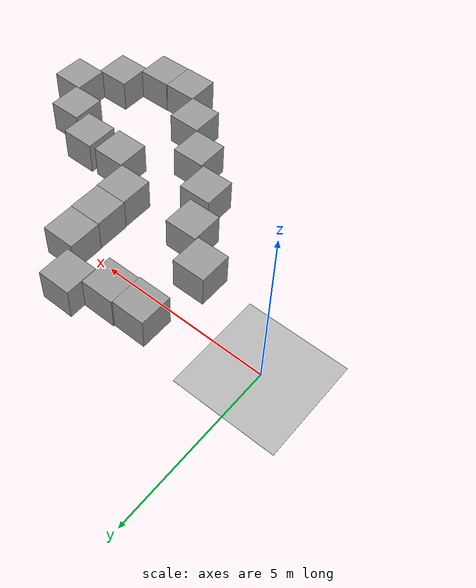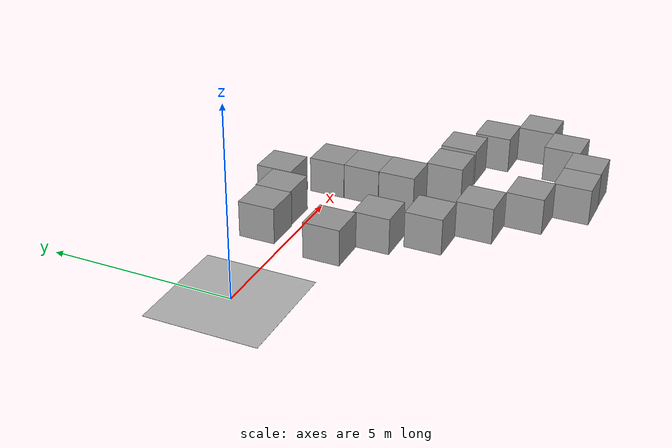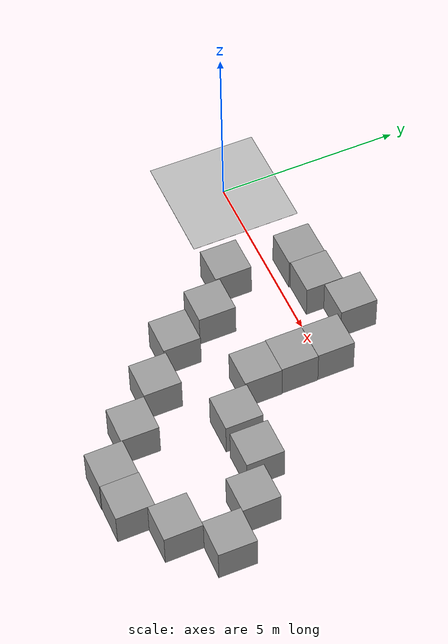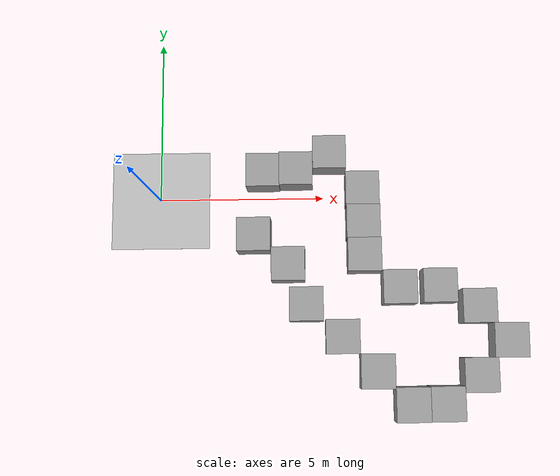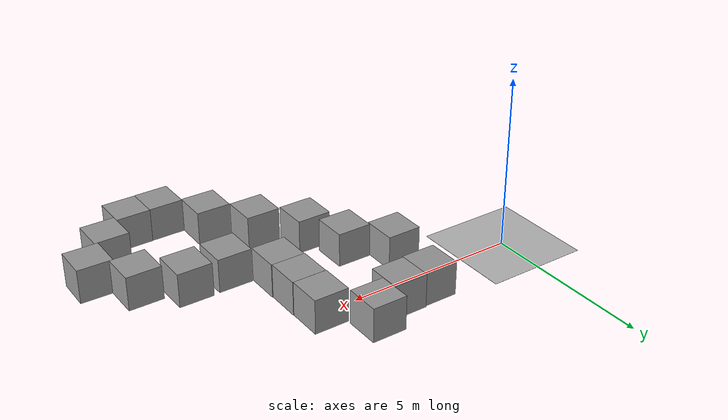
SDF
<sdf version="1.7">
 <world name="default">
  <light name="sun" type="directional">
   <pose>0 0 10 0 -0 0</pose>
   <diffuse>0.8 0.8 0.8 1</diffuse>
   <specular>0.2 0.2 0.2 1</specular>
   <attenuation>
    <range>1000</range>
    <constant>0.9</constant>
    <linear>0.01</linear>
    <quadratic>0.001</quadratic>
   </attenuation>
   <direction>-0.5 0.1 -0.9</direction>
   <spot><inner_angle>0</inner_angle><outer_angle>0</outer_angle><falloff>0</falloff></spot>
  </light>
  <model name="custom_ground_plane">
   <static>1</static>
   <link name="link">
    <collision name="collision">
     <geometry><plane><normal>0 0 1</normal><size>100 100</size></plane></geometry>
     <surface><friction><ode><mu>100</mu><mu2>50</mu2></ode></friction></surface>
     <max_contacts>100</max_contacts>
    </collision>
    <visual name="visual">
     <cast_shadows>0</cast_shadows>
     <geometry><plane><normal>0 0 1</normal><size>3 3</size></plane></geometry>
     <material>
      <script>
       <uri>model://custom_ground_plane/materials/scripts</uri>
       <uri>model://custom_ground_plane/materials/textures/</uri>
       <name>CustomGroundPlane/Image</name>
      </script>
     </material>
    </visual>
   </link>
  </model>
  <gravity>0 0 -9.8</gravity>
  <magnetic_field>6e-06 2.3e-05 -4.2e-05</magnetic_field>
  <atmosphere type="adiabatic"/>
  <physics type="ode">
   <max_step_size>0.001</max_step_size>
   <real_time_factor>1</real_time_factor>
   <real_time_update_rate>1000</real_time_update_rate>
  </physics>
  <scene><ambient>0.4 0.4 0.4 1</ambient><background>0.7 0.7 0.7 1</background><shadows>1</shadows></scene>
  <spherical_coordinates>
   <surface_model>EARTH_WGS84</surface_model>
   <latitude_deg>0</latitude_deg>
   <longitude_deg>0</longitude_deg>
   <elevation>0</elevation>
   <heading_deg>0</heading_deg>
  </spherical_coordinates>
  <model name="unit_box">
   <pose>3.18367 0.742182 0.499995 0 -1e-05 4.3e-05</pose>
   <link name="link">
    <inertial>
     <mass>1</mass>
     <inertia>
      <ixx>0.166667</ixx>
      <ixy>0</ixy>
      <ixz>0</ixz>
      <iyy>0.166667</iyy>
      <iyz>0</iyz>
      <izz>0.166667</izz>
     </inertia>
    </inertial>
    <collision name="collision"><geometry><box><size>1 1 1</size></box></geometry></collision>
    <visual name="visual">
     <geometry><box><size>1 1 1</size></box></geometry>
     <material>
      <script><name>Gazebo/Grey</name><uri>file://media/materials/scripts/gazebo.material</uri></script>
     </material>
    </visual>
   </link>
  </model>
  <model name="unit_box_0">
   <pose>4.18012 0.777787 0.499995 0 1e-05 4.5e-05</pose>
   <link name="link">
    <inertial>
     <mass>1</mass>
     <inertia>
      <ixx>0.166667</ixx>
      <ixy>0</ixy>
      <ixz>0</ixz>
      <iyy>0.166667</iyy>
      <iyz>0</iyz>
      <izz>0.166667</izz>
     </inertia>
    </inertial>
    <collision name="collision"><geometry><box><size>1 1 1</size></box></geometry></collision>
    <visual name="visual">
     <geometry><box><size>1 1 1</size></box></geometry>
     <material>
      <script><name>Gazebo/Grey</name><uri>file://media/materials/scripts/gazebo.material</uri></script>
     </material>
    </visual>
   </link>
  </model>
  <model name="unit_box_1">
   <pose>5.18964 1.26752 0.5 0 -0 4.2e-05</pose>
   <link name="link">
    <inertial>
     <mass>1</mass>
     <inertia>
      <ixx>0.166667</ixx>
      <ixy>0</ixy>
      <ixz>0</ixz>
      <iyy>0.166667</iyy>
      <iyz>0</iyz>
      <izz>0.166667</izz>
     </inertia>
    </inertial>
    <collision name="collision"><geometry><box><size>1 1 1</size></box></geometry></collision>
    <visual name="visual">
     <geometry><box><size>1 1 1</size></box></geometry>
     <material>
      <script><name>Gazebo/Grey</name><uri>file://media/materials/scripts/gazebo.material</uri></script>
     </material>
    </visual>
   </link>
  </model>
  <model name="unit_box_2">
   <pose>6.17079 0.163123 0.5 -0 -0 -0</pose>
   <link name="link">
    <inertial>
     <mass>1</mass>
     <inertia>
      <ixx>0.166667</ixx>
      <ixy>0</ixy>
      <ixz>0</ixz>
      <iyy>0.166667</iyy>
      <iyz>0</iyz>
      <izz>0.166667</izz>
     </inertia>
    </inertial>
    <collision name="collision"><geometry><box><size>1 1 1</size></box></geometry></collision>
    <visual name="visual">
     <geometry><box><size>1 1 1</size></box></geometry>
     <material>
      <script><name>Gazebo/Grey</name><uri>file://media/materials/scripts/gazebo.material</uri></script>
     </material>
    </visual>
   </link>
  </model>
  <model name="unit_box_3">
   <pose>6.18422 -0.837815 0.5 0 -0 0.000267</pose>
   <link name="link">
    <inertial>
     <mass>1</mass>
     <inertia>
      <ixx>0.166667</ixx>
      <ixy>0</ixy>
      <ixz>0</ixz>
      <iyy>0.166667</iyy>
      <iyz>0</iyz>
      <izz>0.166667</izz>
     </inertia>
    </inertial>
    <collision name="collision"><geometry><box><size>1 1 1</size></box></geometry></collision>
    <visual name="visual">
     <geometry><box><size>1 1 1</size></box></geometry>
     <material>
      <script><name>Gazebo/Grey</name><uri>file://media/materials/scripts/gazebo.material</uri></script>
     </material>
    </visual>
   </link>
  </model>
  <model name="unit_box_4">
   <pose>6.20272 -1.83781 0.499995 0 1e-05 0.000265</pose>
   <link name="link">
    <inertial>
     <mass>1</mass>
     <inertia>
      <ixx>0.166667</ixx>
      <ixy>0</ixy>
      <ixz>0</ixz>
      <iyy>0.166667</iyy>
      <iyz>0</iyz>
      <izz>0.166667</izz>
     </inertia>
    </inertial>
    <collision name="collision"><geometry><box><size>1 1 1</size></box></geometry></collision>
    <visual name="visual">
     <geometry><box><size>1 1 1</size></box></geometry>
     <material>
      <script><name>Gazebo/Grey</name><uri>file://media/materials/scripts/gazebo.material</uri></script>
     </material>
    </visual>
   </link>
  </model>
  <model name="unit_box_5">
   <pose>2.90685 -1.19518 0.5 -0 -0 -0</pose>
   <link name="link">
    <inertial>
     <mass>1</mass>
     <inertia>
      <ixx>0.166667</ixx>
      <ixy>0</ixy>
      <ixz>0</ixz>
      <iyy>0.166667</iyy>
      <iyz>0</iyz>
      <izz>0.166667</izz>
     </inertia>
    </inertial>
    <collision name="collision"><geometry><box><size>1 1 1</size></box></geometry></collision>
    <visual name="visual">
     <geometry><box><size>1 1 1</size></box></geometry>
     <material>
      <script><name>Gazebo/Grey</name><uri>file://media/materials/scripts/gazebo.material</uri></script>
     </material>
    </visual>
   </link>
  </model>
  <model name="unit_box_6">
   <pose>3.92795 -2.08759 0.5 -0 -0 -0</pose>
   <link name="link">
    <inertial>
     <mass>1</mass>
     <inertia>
      <ixx>0.166667</ixx>
      <ixy>0</ixy>
      <ixz>0</ixz>
      <iyy>0.166667</iyy>
      <iyz>0</iyz>
      <izz>0.166667</izz>
     </inertia>
    </inertial>
    <collision name="collision"><geometry><box><size>1 1 1</size></box></geometry></collision>
    <visual name="visual">
     <geometry><box><size>1 1 1</size></box></geometry>
     <material>
      <script><name>Gazebo/Grey</name><uri>file://media/materials/scripts/gazebo.material</uri></script>
     </material>
    </visual>
   </link>
  </model>
  <model name="unit_box_7">
   <pose>7.2278 -2.80877 0.5 -0 -0 -0</pose>
   <link name="link">
    <inertial>
     <mass>1</mass>
     <inertia>
      <ixx>0.166667</ixx>
      <ixy>0</ixy>
      <ixz>0</ixz>
      <iyy>0.166667</iyy>
      <iyz>0</iyz>
      <izz>0.166667</izz>
     </inertia>
    </inertial>
    <collision name="collision"><geometry><box><size>1 1 1</size></box></geometry></collision>
    <visual name="visual">
     <geometry><box><size>1 1 1</size></box></geometry>
     <material>
      <script><name>Gazebo/Grey</name><uri>file://media/materials/scripts/gazebo.material</uri></script>
     </material>
    </visual>
   </link>
  </model>
  <model name="unit_box_8">
   <pose>4.45652 -3.27775 0.5 -0 -0 -0</pose>
   <link name="link">
    <inertial>
     <mass>1</mass>
     <inertia>
      <ixx>0.166667</ixx>
      <ixy>0</ixy>
      <ixz>0</ixz>
      <iyy>0.166667</iyy>
      <iyz>0</iyz>
      <izz>0.166667</izz>
     </inertia>
    </inertial>
    <collision name="collision"><geometry><box><size>1 1 1</size></box></geometry></collision>
    <visual name="visual">
     <geometry><box><size>1 1 1</size></box></geometry>
     <material>
      <script><name>Gazebo/Grey</name><uri>file://media/materials/scripts/gazebo.material</uri></script>
     </material>
    </visual>
   </link>
  </model>
  <model name="unit_box_9">
   <pose>5.51416 -4.24158 0.5 -0 -0 -0</pose>
   <link name="link">
    <inertial>
     <mass>1</mass>
     <inertia>
      <ixx>0.166667</ixx>
      <ixy>0</ixy>
      <ixz>0</ixz>
      <iyy>0.166667</iyy>
      <iyz>0</iyz>
      <izz>0.166667</izz>
     </inertia>
    </inertial>
    <collision name="collision"><geometry><box><size>1 1 1</size></box></geometry></collision>
    <visual name="visual">
     <geometry><box><size>1 1 1</size></box></geometry>
     <material>
      <script><name>Gazebo/Grey</name><uri>file://media/materials/scripts/gazebo.material</uri></script>
     </material>
    </visual>
   </link>
  </model>
  <model name="unit_box_10">
   <pose>6.52151 -5.25355 0.5 -0 -0 -0.010135</pose>
   <link name="link">
    <inertial>
     <mass>1</mass>
     <inertia>
      <ixx>0.166667</ixx>
      <ixy>0</ixy>
      <ixz>0</ixz>
      <iyy>0.166667</iyy>
      <iyz>0</iyz>
      <izz>0.166667</izz>
     </inertia>
    </inertial>
    <collision name="collision"><geometry><box><size>1 1 1</size></box></geometry></collision>
    <visual name="visual">
     <geometry><box><size>1 1 1</size></box></geometry>
     <material>
      <script><name>Gazebo/Grey</name><uri>file://media/materials/scripts/gazebo.material</uri></script>
     </material>
    </visual>
   </link>
  </model>
  <model name="unit_box_11">
   <pose>7.51785 -6.21486 0.5 0 -0 0.001858</pose>
   <link name="link">
    <inertial>
     <mass>1</mass>
     <inertia>
      <ixx>0.166667</ixx>
      <ixy>0</ixy>
      <ixz>0</ixz>
      <iyy>0.166667</iyy>
      <iyz>0</iyz>
      <izz>0.166667</izz>
     </inertia>
    </inertial>
    <collision name="collision"><geometry><box><size>1 1 1</size></box></geometry></collision>
    <visual name="visual">
     <geometry><box><size>1 1 1</size></box></geometry>
     <material>
      <script><name>Gazebo/Grey</name><uri>file://media/materials/scripts/gazebo.material</uri></script>
     </material>
    </visual>
   </link>
  </model>
  <model name="unit_box_12">
   <pose>8.51787 -6.20198 0.5 0 -0 0.00183</pose>
   <link name="link">
    <inertial>
     <mass>1</mass>
     <inertia>
      <ixx>0.166667</ixx>
      <ixy>0</ixy>
      <ixz>0</ixz>
      <iyy>0.166667</iyy>
      <iyz>0</iyz>
      <izz>0.166667</izz>
     </inertia>
    </inertial>
    <collision name="collision"><geometry><box><size>1 1 1</size></box></geometry></collision>
    <visual name="visual">
     <geometry><box><size>1 1 1</size></box></geometry>
     <material>
      <script><name>Gazebo/Grey</name><uri>file://media/materials/scripts/gazebo.material</uri></script>
     </material>
    </visual>
   </link>
  </model>
  <model name="unit_box_13">
   <pose>9.51704 -5.39073 0.5 0 -0 0.000621</pose>
   <link name="link">
    <inertial>
     <mass>1</mass>
     <inertia>
      <ixx>0.166667</ixx>
      <ixy>0</ixy>
      <ixz>0</ixz>
      <iyy>0.166667</iyy>
      <iyz>0</iyz>
      <izz>0.166667</izz>
     </inertia>
    </inertial>
    <collision name="collision"><geometry><box><size>1 1 1</size></box></geometry></collision>
    <visual name="visual">
     <geometry><box><size>1 1 1</size></box></geometry>
     <material>
      <script><name>Gazebo/Grey</name><uri>file://media/materials/scripts/gazebo.material</uri></script>
     </material>
    </visual>
   </link>
  </model>
  <model name="unit_box_14">
   <pose>10.4259 -4.39576 0.5 0 0 -0.013481</pose>
   <link name="link">
    <inertial>
     <mass>1</mass>
     <inertia>
      <ixx>0.166667</ixx>
      <ixy>0</ixy>
      <ixz>0</ixz>
      <iyy>0.166667</iyy>
      <iyz>0</iyz>
      <izz>0.166667</izz>
     </inertia>
    </inertial>
    <collision name="collision"><geometry><box><size>1 1 1</size></box></geometry></collision>
    <visual name="visual">
     <geometry><box><size>1 1 1</size></box></geometry>
     <material>
      <script><name>Gazebo/Grey</name><uri>file://media/materials/scripts/gazebo.material</uri></script>
     </material>
    </visual>
   </link>
  </model>
  <model name="unit_box_15">
   <pose>9.54269 -3.38963 0.5 0 -0 0.001654</pose>
   <link name="link">
    <inertial>
     <mass>1</mass>
     <inertia>
      <ixx>0.166667</ixx>
      <ixy>0</ixy>
      <ixz>0</ixz>
      <iyy>0.166667</iyy>
      <iyz>0</iyz>
      <izz>0.166667</izz>
     </inertia>
    </inertial>
    <collision name="collision"><geometry><box><size>1 1 1</size></box></geometry></collision>
    <visual name="visual">
     <geometry><box><size>1 1 1</size></box></geometry>
     <material>
      <script><name>Gazebo/Grey</name><uri>file://media/materials/scripts/gazebo.material</uri></script>
     </material>
    </visual>
   </link>
  </model>
  <model name="unit_box_16">
   <pose>8.40613 -2.78028 0.499995 -1e-05 -0 -0</pose>
   <link name="link">
    <inertial>
     <mass>1</mass>
     <inertia>
      <ixx>0.166667</ixx>
      <ixy>0</ixy>
      <ixz>0</ixz>
      <iyy>0.166667</iyy>
      <iyz>0</iyz>
      <izz>0.166667</izz>
     </inertia>
    </inertial>
    <collision name="collision"><geometry><box><size>1 1 1</size></box></geometry></collision>
    <visual name="visual">
     <geometry><box><size>1 1 1</size></box></geometry>
     <material>
      <script><name>Gazebo/Grey</name><uri>file://media/materials/scripts/gazebo.material</uri></script>
     </material>
    </visual>
   </link>
  </model>
 </world>
</sdf>
